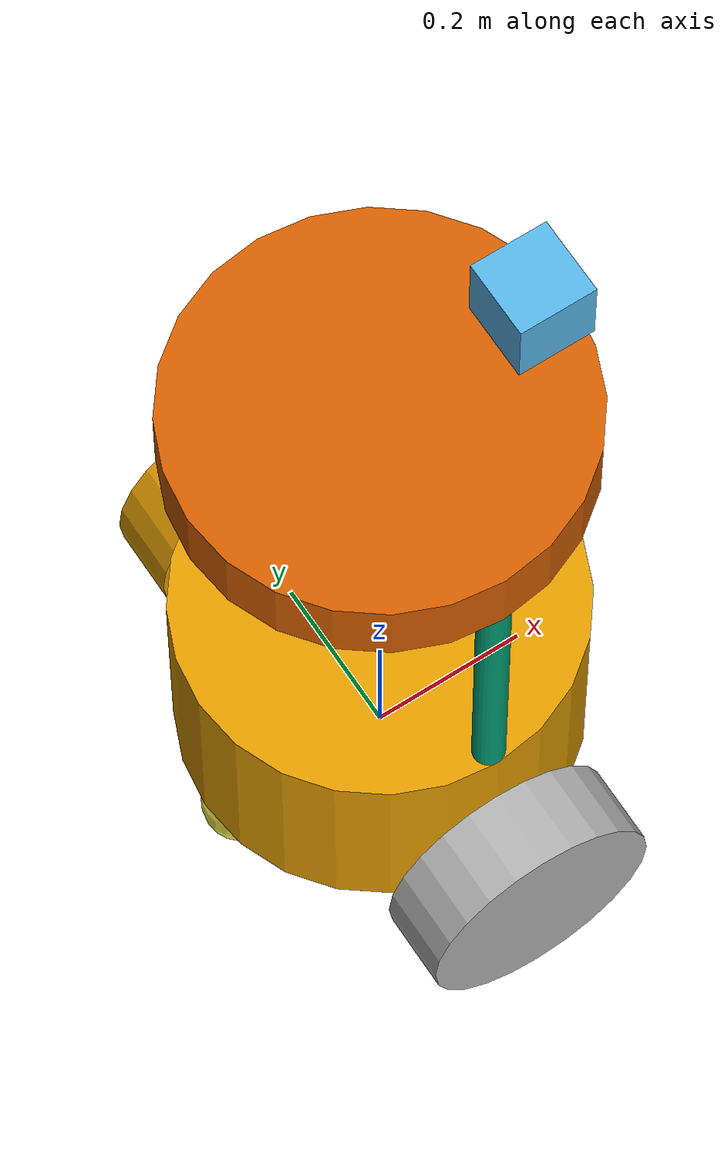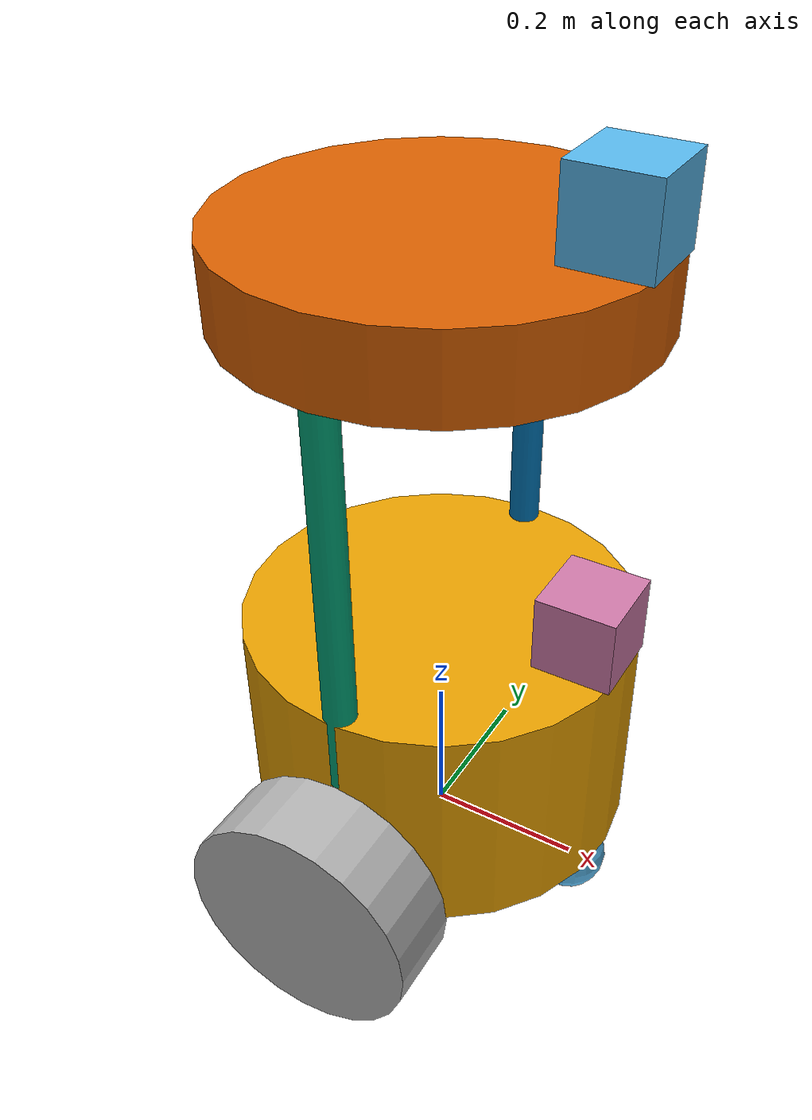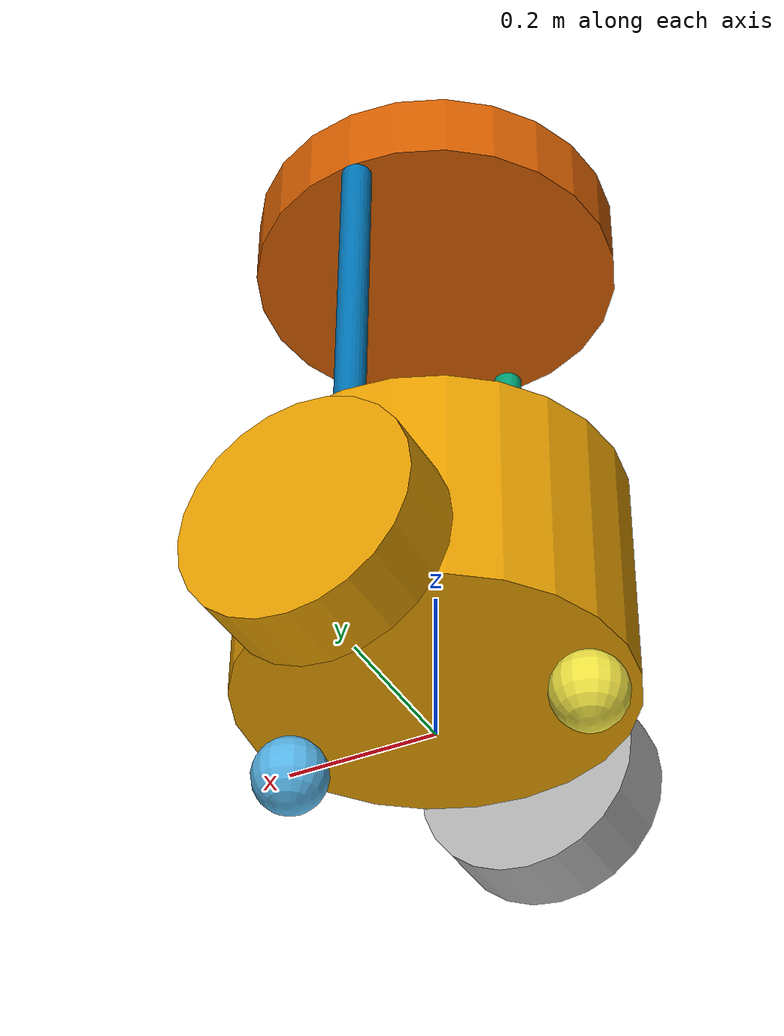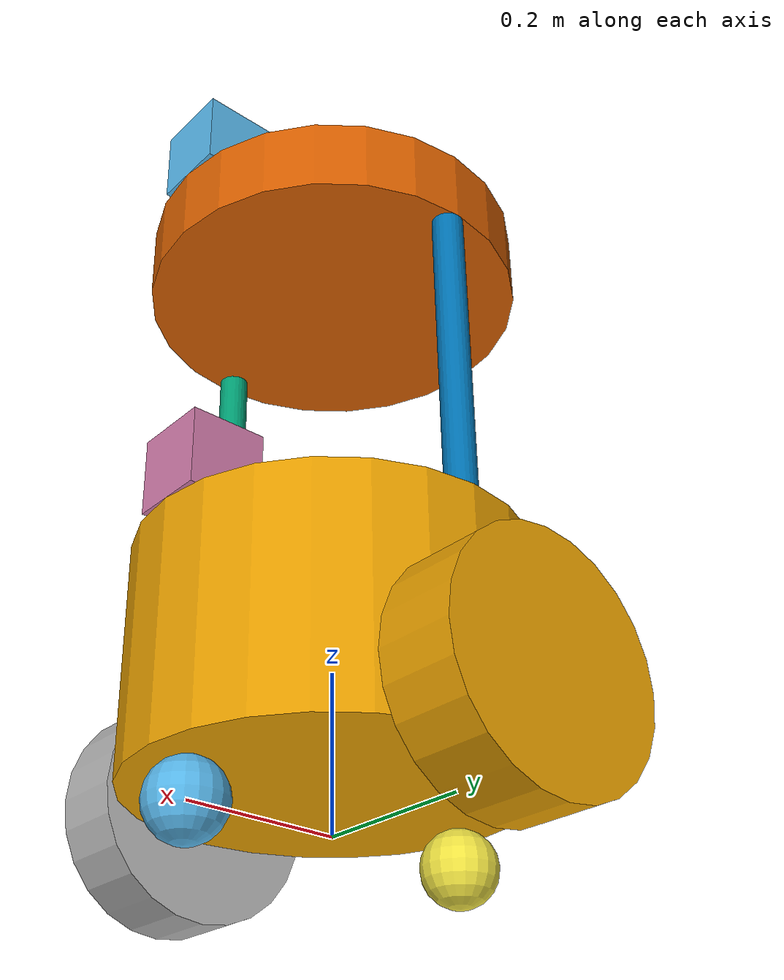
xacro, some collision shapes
<?xml version="1.0" ?>
<robot name="BaristaII"
  xmlns:xacro="http://www.ros.org/wiki/xacro">
  <xacro:include filename="$(find waiter_robot)/urdf/materials.xacro" />
  <xacro:include filename="$(find waiter_robot)/urdf/barista.gazebo" />
  <xacro:include filename="$(find waiter_robot)/urdf/macros.xacro" />

  <xacro:property name="casterRadius" value="0.049"/>
  <xacro:property name="casterMass" value="1"/>
  <xacro:property name="cameraSize" value="0.1"/>
  <xacro:property name="cameraMass" value="0.5"/>

  <joint name="BaristaII__link_0_0_clone_JOINT_3" type="fixed">
    <parent link="left_rod"/>
    <child link="top_plate"/>
    <origin rpy="0 0 0" xyz="0   0.23 0.3"/>
    <axis xyz="0 0 0"/>
    <limit effort="0" lower="0" upper="0" velocity="0"/>
  </joint>
  <joint name="BaristaII__link_0_JOINT_0" type="fixed">
    <parent link="chassis"/>
    <child link="front_caster"/>
    <origin rpy="0      -0.00014 -0.00024" xyz="2.0004e-01  0 6.0000e-05"/>
    <axis xyz="0 0 0"/>
    <limit effort="0" lower="0" upper="0" velocity="0"/>
  </joint>
  <joint name="BaristaII__link_0_JOINT_1_0" type="fixed">
    <parent link="chassis"/>
    <child link="back_caster"/>
    <origin rpy="0      -0.00029 -0.00049" xyz="-2.0004e-01  0 -6.0000e-05"/>
    <axis xyz="0 0 0"/>
    <limit effort="0" lower="0" upper="0" velocity="0"/>
  </joint>
  <joint name="BaristaII__link_0_JOINT_1" type="fixed">
    <parent link="chassis"/>
    <child link="left_rod"/>
    <origin rpy="0 0 0" xyz="0   -0.23  0.5"/>
    <axis xyz="0 0 0"/>
    <limit effort="0" lower="0" upper="0" velocity="0"/>
  </joint>
  <joint name="BaristaII__link_0_JOINT_2_0" type="fixed">
    <parent link="chassis"/>
    <child link="right_rod"/>
    <origin rpy="0 0 0" xyz="0      0.22999 0.5"/>
    <axis xyz="0 0 0"/>
    <limit effort="0" lower="0" upper="0" velocity="0"/>
  </joint>
  <joint name="BaristaII__link_0_JOINT_2_1" type="fixed">
    <parent link="chassis"/>
    <child link="camera"/>
    <origin rpy="0      -0.00014 -0.00024" xyz="0.2  0.0000e+00  4.0037e-01"/>
    <axis xyz="0 0 0"/>
    <limit effort="0" lower="0" upper="0" velocity="0"/>
  </joint>
  <joint name="left_wheel_hinge" type="continuous">
    <parent link="chassis"/>
    <child link="left_wheel"/>
    <origin rpy="0 0 0" xyz="0      -0.30001  0.1"/>
    <axis xyz="0 1 0" rpy="0 0 0"/>
    <limit effort="10000" velocity="1000"/>
    <dynamics damping="1.0" friction="1.0"/>
  </joint>
  <joint name="right_wheel_hinge" type="continuous">
    <parent link="chassis"/>
    <child link="right_wheel"/>
    <origin rpy="0 0 0" xyz="0      0.30001 0.1"/>
    <axis xyz="0 1 0" rpy="0 0 0"/>
    <limit effort="10000" velocity="1000"/>
    <dynamics damping="1.0" friction="1.0"/>
  </joint>
  <joint name="top_plate_JOINT_3" type="fixed">
    <parent link="top_plate"/>
    <child link="hokuyo"/>
    <origin rpy="0      -0.00014 -0.00024" xyz="0.2      0      0.10004"/>
    <axis xyz="0 0 0"/>
    <limit effort="0" lower="0" upper="0" velocity="0"/>
  </joint>
  <link name="chassis">
    <inertial>
      <mass value="5"/>
      <origin rpy="0 0 0" xyz="0 0 0"/>
      <inertia ixx="0.115625" ixy="0" ixz="0" iyy="0.115625" iyz="0" izz="0.15625"/>
    </inertial>
    <collision>
      <origin rpy="0 0 0" xyz="0  0  0.2"/>
      <geometry>
        <cylinder length="0.3" radius="0.25"/>
      </geometry>
    </collision>
    <visual>
      <origin rpy="0 0 0" xyz="0  0  0.2"/>
      <geometry>
        <cylinder length="0.3" radius="0.25"/>
      </geometry>
    </visual>
  </link>
  <link name="front_caster">
    <inertial>
      <mass value="${casterMass}"/>
      <origin rpy="0 0 0" xyz="0 0 0"/>
      <xacro:sphere_inertia m="${casterMass}" r="${casterRadius}"/>
    </inertial>
    <collision>
      <origin rpy="0 0 0" xyz="0 0 0"/>
      <geometry>
        <sphere radius="0.049"/>
      </geometry>
    </collision>
    <visual>
      <origin rpy="0 0 0" xyz="0 0 0"/>
      <geometry>
        <sphere radius="0.049"/>
      </geometry>
    </visual>
  </link>
  <link name="left_rod">
    <inertial>
      <mass value="0.5"/>
      <origin rpy="0 0 0" xyz="0 0 0"/>
      <inertia ixx="0.020467" ixy="0" ixz="0" iyy="0.020467" iyz="0" izz="0.0001"/>
    </inertial>
    <collision>
      <origin rpy="0 0 0" xyz="0 0 0"/>
      <geometry>
        <cylinder length="0.3" radius="0.02"/>
      </geometry>
    </collision>
    <visual>
      <origin rpy="0 0 0" xyz="0 0 0"/>
      <geometry>
        <cylinder length="0.5" radius="0.02"/>
      </geometry>
    </visual>
  </link>
  <link name="back_caster">
    <inertial>
      <mass value="${casterMass}"/>
      <origin rpy="0 0 0" xyz="0 0 0"/>
      <xacro:sphere_inertia m="${casterMass}" r="${casterRadius}"/>
    </inertial>
    <collision>
      <origin rpy="0 0 0" xyz="0 0 0"/>
      <geometry>
        <sphere radius="0.049"/>
      </geometry>
    </collision>
    <visual>
      <origin rpy="0 0 0" xyz="0 0 0"/>
      <geometry>
        <sphere radius="0.049"/>
      </geometry>
    </visual>
  </link>
  <link name="right_rod">
    <inertial>
      <mass value="0.5"/>
      <origin rpy="0 0 0" xyz="0 0 0"/>
      <inertia ixx="0.020467" ixy="0" ixz="0" iyy="0.020467" iyz="0" izz="0.0001"/>
    </inertial>
    <collision>
      <origin rpy="0 0 0" xyz="0 0 0"/>
      <geometry>
        <cylinder length="0.5" radius="0.02"/>
      </geometry>
    </collision>
    <visual>
      <origin rpy="0 0 0" xyz="0 0 0"/>
      <geometry>
        <cylinder length="0.5" radius="0.02"/>
      </geometry>
    </visual>
  </link>
  <link name="top_plate">
    <inertial>
      <mass value="2"/>
      <origin rpy="0 0 0" xyz="0 0 0"/>
      <inertia ixx="0.032917" ixy="0" ixz="0" iyy="0.032917" iyz="0" izz="0.0625"/>
    </inertial>
    <collision>
      <origin rpy="0 0 0" xyz="0 0 0"/>
      <geometry>
        <cylinder length="0.1" radius="0.25"/>
      </geometry>
    </collision>
    <visual>
      <origin rpy="0 0 0" xyz="0 0 0"/>
      <geometry>
        <cylinder length="0.1" radius="0.25"/>
      </geometry>
    </visual>
  </link>
  <link name="camera">
    <inertial>
      <mass value="0.1"/>
      <origin rpy="0 0 0" xyz="0 0 0"/>
      <inertia ixx="0.166667" ixy="0" ixz="0" iyy="0.166667" iyz="0" izz="0.166667"/>
    </inertial>
    <collision>
      <origin rpy="0 0 0" xyz="0 0 0"/>
      <geometry>
        <box size="${cameraSize} ${cameraSize} ${cameraSize}"/>
      </geometry>
    </collision>
    <visual>
      <origin rpy="0 0 0" xyz="0 0 0"/>
      <geometry>
        <box size="${cameraSize} ${cameraSize} ${cameraSize}"/>
      </geometry>
    </visual>
  </link>
  <link name="left_wheel">
    <inertial>
      <mass value="${cameraMass}" />
      <origin rpy=" 0  1.5707  1.5707" xyz="0 0 0"/>
      <xacro:box_inertia m="${cameraMass}" x="${cameraSize}" y="${cameraSize}" z="${cameraSize}" />
    </inertial>
    <collision>
      <origin rpy=" 0  1.5707  1.5707" xyz="0 0 0"/>
      <geometry>
        <cylinder length="0.1" radius="0.15"/>
      </geometry>
    </collision>
    <visual>
      <origin rpy=" 0  1.5707  1.5707" xyz="0 0 0"/>
      <geometry>
        <cylinder length="0.1" radius="0.15"/>
      </geometry>
    </visual>
  </link>
  <link name="right_wheel">
    <inertial>
      <mass value="1"/>
      <origin rpy=" 0  1.5707  1.5707" xyz="0 0 0"/>
      <inertia ixx="0.145833" ixy="0" ixz="0" iyy="0.145833" iyz="0" izz="0.125"/>
    </inertial>
    <collision>
      <origin rpy=" 0  1.5707  1.5707" xyz="0 0 0"/>
      <geometry>
        <cylinder length="0.1" radius="0.15"/>
      </geometry>
    </collision>
    <visual>
      <origin rpy=" 0  1.5707  1.5707" xyz="0 0 0"/>
      <geometry>
        <cylinder length="0.1" radius="0.15"/>
      </geometry>
    </visual>
  </link>
  <link name="hokuyo">
    <inertial>
      <mass value="0.1"/>
      <origin rpy="0 0 0" xyz="0 0 0"/>
      <inertia ixx="0.166667" ixy="0" ixz="0" iyy="0.166667" iyz="0" izz="0.166667"/>
    </inertial>
    <collision name="BaristaII__collision">
      <origin rpy="0 0 0" xyz="0 0 0"/>
      <geometry>
        <box size="0.1 0.1 0.1"/>
      </geometry>
    </collision>
    <visual name="BaristaII__visual">
      <origin rpy="0 0 0" xyz="0 0 0"/>
      <geometry>
        <mesh filename="package://waiter_robot/meshes/hokuyo.dae" />
      </geometry>
    </visual>
  </link>
  <joint name="camera_optical_joint" type="fixed">
    <origin xyz="0 0 0" rpy="-1.5707 0 -1.5707"/>
    <parent link="camera"/>
    <child link="camera_link_optical"/>
  </joint>

  <link name="camera_link_optical">
  </link>
</robot>

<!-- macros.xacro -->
<robot xmlns:xacro="http://www.ros.org/wiki/xacro">
  <xacro:macro name="cylinder_inertia" params="m r h">
    <inertia ixx="${m*(3*r*r+h*h)/12}" ixy = "0" ixz = "0" iyy="${m*(3*r*r+h*h)/12}" iyz = "0" izz="${m*r*r/2}" />
  </xacro:macro>

  <xacro:macro name="box_inertia" params="m x y z">
    <inertia ixx="${m*(y*y+z*z)/12}" ixy = "0" ixz = "0" iyy="${m*(x*x+z*z)/12}" iyz = "0" izz="${m*(x*x+z*z)/12}" />
  </xacro:macro>

  <xacro:macro name="sphere_inertia" params="m r">
    <inertia ixx="${2*m*r*r/5}" ixy = "0" ixz = "0" iyy="${2*m*r*r/5}" iyz = "0" izz="${2*m*r*r/5}" />
  </xacro:macro>

  <xacro:macro name="wheel" params="lr tY">

    <link name="${lr}_wheel">
      <collision>
        <origin xyz="0 0 0" rpy="0 ${PI/2} ${PI/2}" />
        <geometry>
          <cylinder length="${wheelWidth}" radius="${wheelRadius}"/>
        </geometry>
      </collision>

      <visual>
        <origin xyz="0 0 0" rpy="0 ${PI/2} ${PI/2}" />
        <geometry>
          <cylinder length="${wheelWidth}" radius="${wheelRadius}"/>
        </geometry>
        <material name="black"/>
      </visual>

      <inertial>
        <origin xyz="0 0 0" rpy="0 ${PI/2} ${PI/2}" />
        <mass value="${wheelMass}"/>
        <xacro:cylinder_inertia m="${wheelMass}" r="${wheelRadius}" h="${wheelWidth}"/>
      </inertial>
    </link>

    <gazebo reference="${lr}_wheel">
      <mu1 value="1.0"/>
      <mu2 value="1.0"/>
      <kp value="10000000.0" />
      <kd value="1.0" />
      <fdir1 value="1 0 0"/>
      <material>Gazebo/Black</material>
    </gazebo>

    <joint name="${lr}_wheel_hinge" type="continuous">
      <parent link="chassis"/>
      <child link="${lr}_wheel"/>
      <origin xyz="${+wheelPos-chassisLength/4} ${tY*wheelWidth/2+tY*chassisWidth/2} ${wheelRadius}" rpy="0 0 0" />
      <axis xyz="0 1 0" rpy="0 0 0" />
      <limit effort="100" velocity="100"/>
      <joint_properties damping="0.0" friction="0.0"/>
    </joint>

    <transmission name="${lr}_trans">
      <type>transmission_interface/SimpleTransmission</type>
      <joint name="${lr}_wheel_hinge"/>
      <actuator name="${lr}Motor">
        <hardwareInterface>EffortJointInterface</hardwareInterface>
        <mechanicalReduction>10</mechanicalReduction>
      </actuator>
    </transmission>

  </xacro:macro>
</robot>
